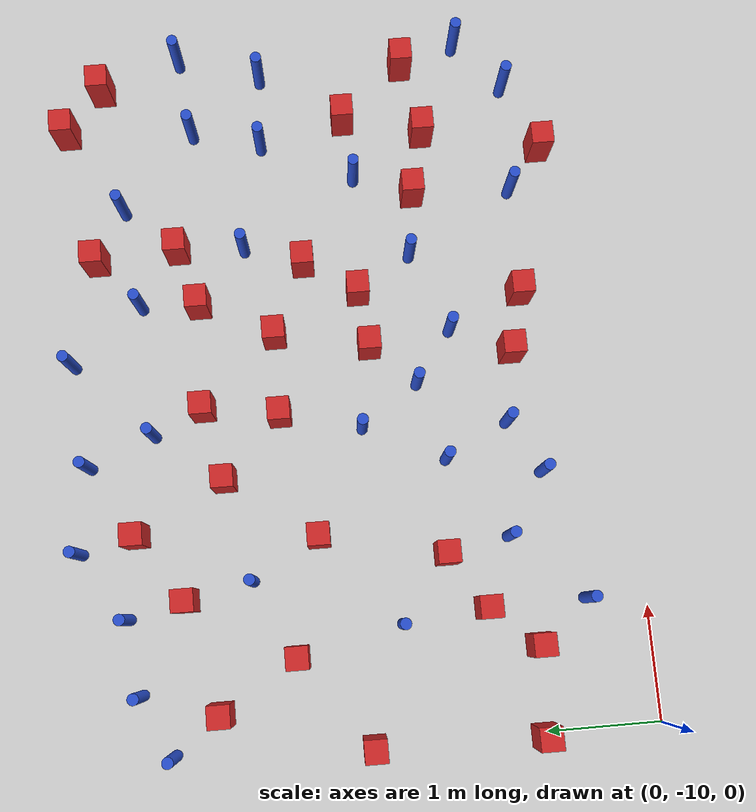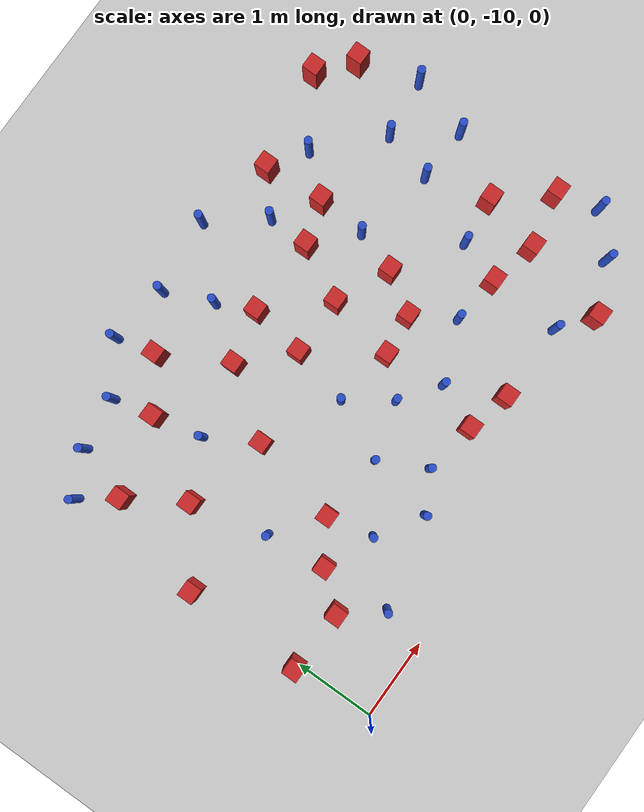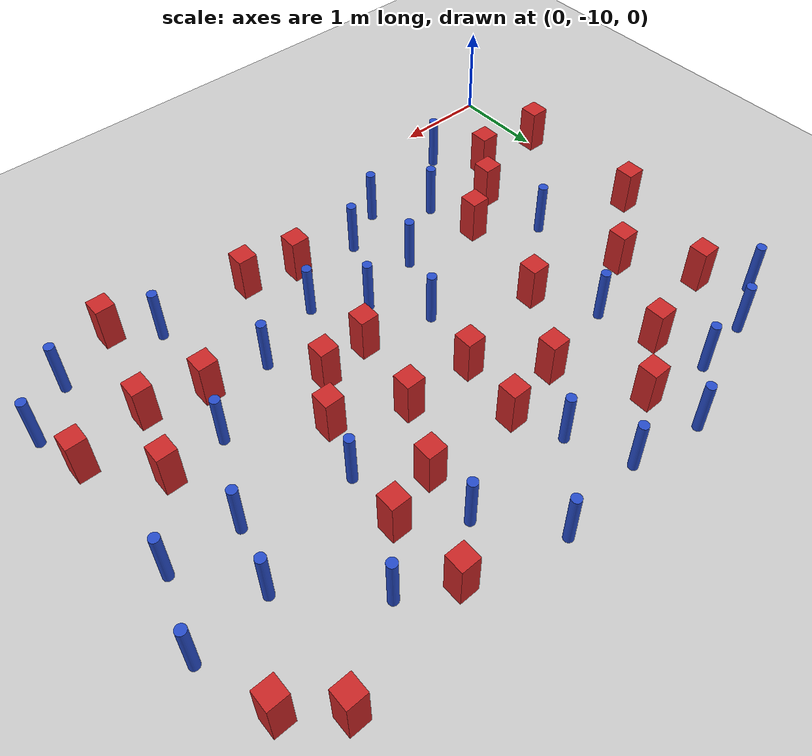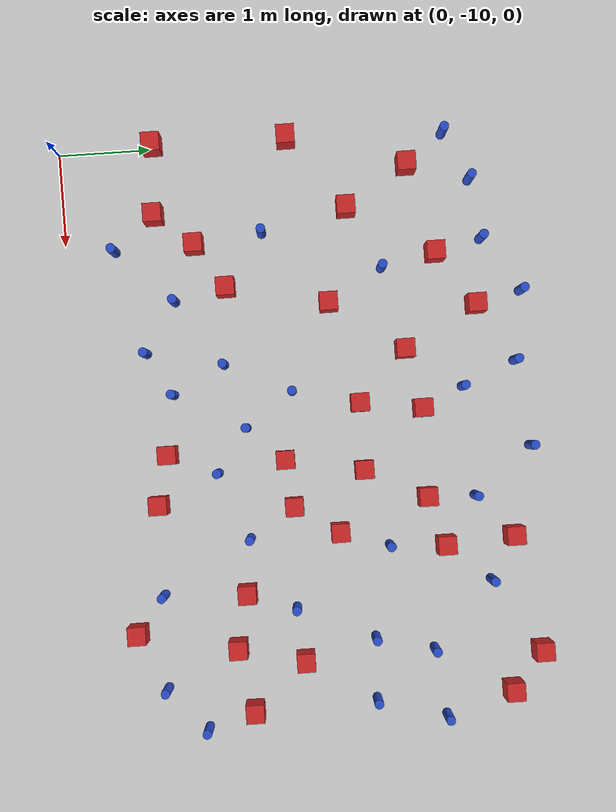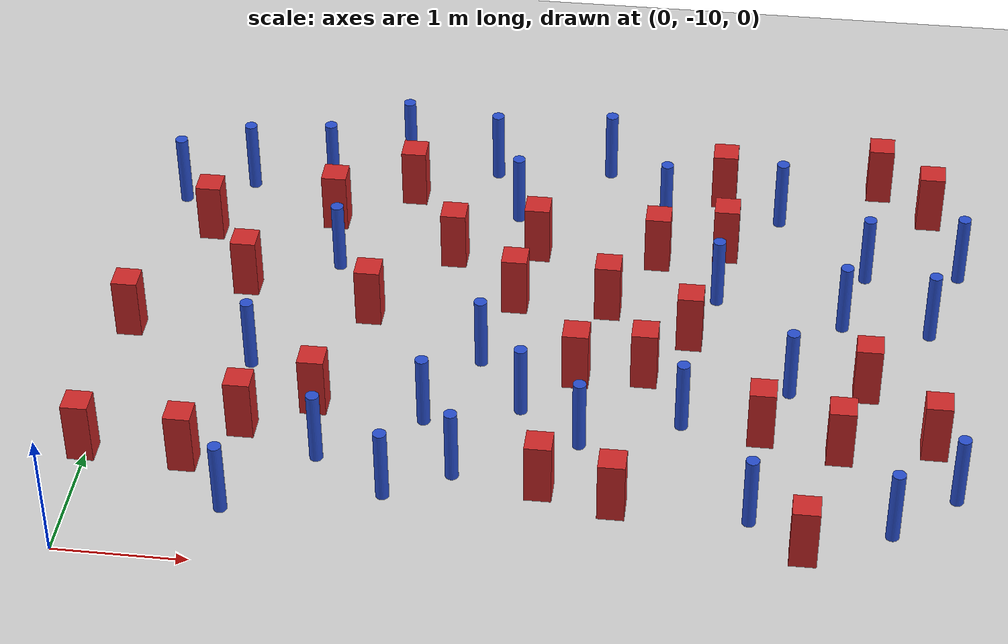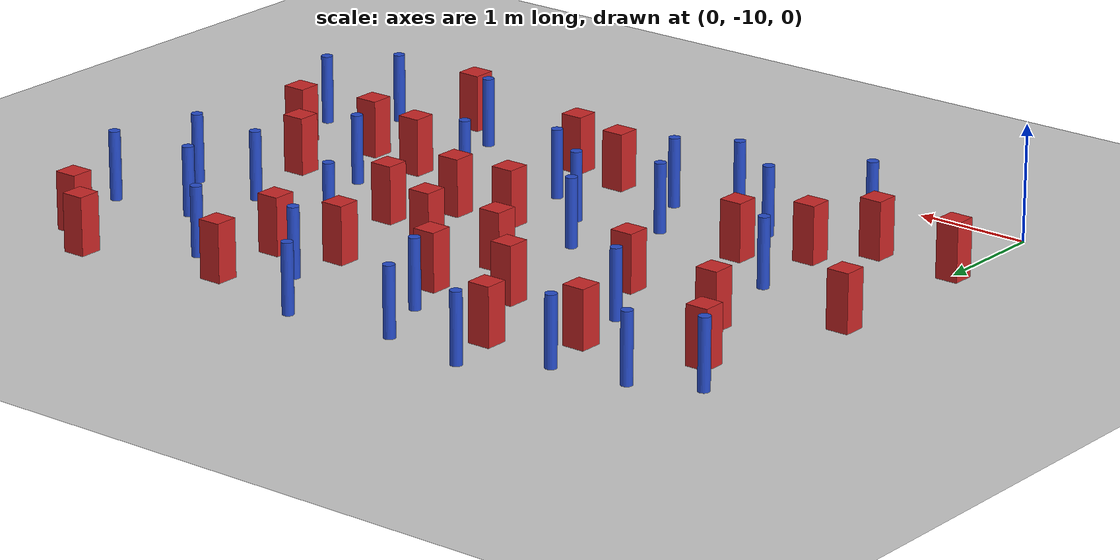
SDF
<sdf version="1.6">
 <world name="default">
  <model name="ground_plane">
   <static>1</static>
   <link name="link">
    <collision name="collision">
     <geometry><plane><normal>0 0 1</normal><size>100 100</size></plane></geometry>
     <surface><friction><ode><mu>100</mu><mu2>50</mu2></ode></friction></surface>
    </collision>
    <visual name="visual">
     <cast_shadows>0</cast_shadows>
     <geometry><plane><normal>0 0 1</normal><size>100 100</size></plane></geometry>
     <material>
      <ambient>1.0 1.0 1.0 1.0</ambient>
      <diffuse>0.8 0.8 0.8 1.0</diffuse>
      <specular>0.01 0.01 0.01 1.000000</specular>
     </material>
    </visual>
   </link>
  </model>
  <model name="square_post_obstacle6">
   <static>true</static>
   <pose>4.34006714366 -7.19658364788 -6.11067671241e-07 -5.50515727128e-06 -8.79689657224e-07 2.37013304536e-05</pose>
   <link name="link">
    <pose>0 0 0.25 0 -0 0</pose>
    <inertial>
     <mass>100</mass>
     <inertia>
      <ixx>0.166667</ixx>
      <ixy>0</ixy>
      <ixz>0</ixz>
      <iyy>0.166667</iyy>
      <iyz>0</iyz>
      <izz>0.166667</izz>
     </inertia>
    </inertial>
    <collision name="collision"><geometry><box><size>.2 .2 .5</size></box></geometry></collision>
    <visual name="visual">
     <geometry><box><size>.2 .2 .5</size></box></geometry>
     <material>
      <script><name>Gazebo/Red</name><uri>file://media/materials/scripts/gazebo.material</uri></script>
     </material>
    </visual>
   </link>
  </model>
  <model name="square_post_obstacle10">
   <static>true</static>
   <pose>4.01620284526 -6.22145135886 -6.11067671241e-07 -5.50515727128e-06 -8.79689657224e-07 2.37013304536e-05</pose>
   <link name="link">
    <pose>0 0 0.25 0 -0 0</pose>
    <inertial>
     <mass>100</mass>
     <inertia>
      <ixx>0.166667</ixx>
      <ixy>0</ixy>
      <ixz>0</ixz>
      <iyy>0.166667</iyy>
      <iyz>0</iyz>
      <izz>0.166667</izz>
     </inertia>
    </inertial>
    <collision name="collision"><geometry><box><size>.2 .2 .5</size></box></geometry></collision>
    <visual name="visual">
     <geometry><box><size>.2 .2 .5</size></box></geometry>
     <material>
      <script><name>Gazebo/Red</name><uri>file://media/materials/scripts/gazebo.material</uri></script>
     </material>
    </visual>
   </link>
  </model>
  <model name="square_post_obstacle14">
   <static>true</static>
   <pose>3.91428252671 -9.15103433209 -6.11067671241e-07 -5.50515727128e-06 -8.79689657224e-07 2.37013304536e-05</pose>
   <link name="link">
    <pose>0 0 0.25 0 -0 0</pose>
    <inertial>
     <mass>100</mass>
     <inertia>
      <ixx>0.166667</ixx>
      <ixy>0</ixy>
      <ixz>0</ixz>
      <iyy>0.166667</iyy>
      <iyz>0</iyz>
      <izz>0.166667</izz>
     </inertia>
    </inertial>
    <collision name="collision"><geometry><box><size>.2 .2 .5</size></box></geometry></collision>
    <visual name="visual">
     <geometry><box><size>.2 .2 .5</size></box></geometry>
     <material>
      <script><name>Gazebo/Red</name><uri>file://media/materials/scripts/gazebo.material</uri></script>
     </material>
    </visual>
   </link>
  </model>
  <model name="pole_obstacle9">
   <static>true</static>
   <pose>1.01335251452 -7.83346470097 -9.47619616065e-06 5.49618799737e-07 2.36310414059e-07 -1.550905348e-07</pose>
   <link name="link">
    <pose>0 0 0.3 0 -0 0</pose>
    <inertial>
     <mass>1</mass>
     <inertia><ixx>0.145833</ixx><ixy>0</ixy><ixz>0</ixz><iyy>0.145833</iyy><iyz>0</iyz><izz>0.125</izz></inertia>
    </inertial>
    <collision name="collision">
     <geometry><cylinder><radius>0.05</radius><length>.6</length></cylinder></geometry>
    </collision>
    <visual name="visual">
     <geometry><cylinder><radius>0.05</radius><length>.6</length></cylinder></geometry>
     <material>
      <script><name>Gazebo/Blue</name><uri>file://media/materials/scripts/gazebo.material</uri></script>
     </material>
    </visual>
   </link>
  </model>
  <model name="square_post_obstacle20">
   <static>true</static>
   <pose>3.67671077395 -6.89130753897 -6.11067671241e-07 -5.50515727128e-06 -8.79689657224e-07 2.37013304536e-05</pose>
   <link name="link">
    <pose>0 0 0.25 0 -0 0</pose>
    <inertial>
     <mass>100</mass>
     <inertia>
      <ixx>0.166667</ixx>
      <ixy>0</ixy>
      <ixz>0</ixz>
      <iyy>0.166667</iyy>
      <iyz>0</iyz>
      <izz>0.166667</izz>
     </inertia>
    </inertial>
    <collision name="collision"><geometry><box><size>.2 .2 .5</size></box></geometry></collision>
    <visual name="visual">
     <geometry><box><size>.2 .2 .5</size></box></geometry>
     <material>
      <script><name>Gazebo/Red</name><uri>file://media/materials/scripts/gazebo.material</uri></script>
     </material>
    </visual>
   </link>
  </model>
  <model name="square_post_obstacle21">
   <static>true</static>
   <pose>6.22377521215 -8.25365913007 -6.11067671241e-07 -5.50515727128e-06 -8.79689657224e-07 2.37013304536e-05</pose>
   <link name="link">
    <pose>0 0 0.25 0 -0 0</pose>
    <inertial>
     <mass>100</mass>
     <inertia>
      <ixx>0.166667</ixx>
      <ixy>0</ixy>
      <ixz>0</ixz>
      <iyy>0.166667</iyy>
      <iyz>0</iyz>
      <izz>0.166667</izz>
     </inertia>
    </inertial>
    <collision name="collision"><geometry><box><size>.2 .2 .5</size></box></geometry></collision>
    <visual name="visual">
     <geometry><box><size>.2 .2 .5</size></box></geometry>
     <material>
      <script><name>Gazebo/Red</name><uri>file://media/materials/scripts/gazebo.material</uri></script>
     </material>
    </visual>
   </link>
  </model>
  <model name="pole_obstacle14">
   <static>true</static>
   <pose>5.13563322867 -7.72506180327 -9.47619616065e-06 5.49618799737e-07 2.36310414037e-07 -1.55090534814e-07</pose>
   <link name="link">
    <pose>0 0 0.3 0 -0 0</pose>
    <inertial>
     <mass>1</mass>
     <inertia><ixx>0.145833</ixx><ixy>0</ixy><ixz>0</ixz><iyy>0.145833</iyy><iyz>0</iyz><izz>0.125</izz></inertia>
    </inertial>
    <collision name="collision">
     <geometry><cylinder><radius>0.05</radius><length>.6</length></cylinder></geometry>
    </collision>
    <visual name="visual">
     <geometry><cylinder><radius>0.05</radius><length>.6</length></cylinder></geometry>
     <material>
      <script><name>Gazebo/Blue</name><uri>file://media/materials/scripts/gazebo.material</uri></script>
     </material>
    </visual>
   </link>
  </model>
  <model name="pole_obstacle16">
   <static>true</static>
   <pose>4.52123557365 -6.66321490745 -9.47619616065e-06 5.49618799737e-07 2.36310414037e-07 -1.55090534814e-07</pose>
   <link name="link">
    <pose>0 0 0.3 0 -0 0</pose>
    <inertial>
     <mass>1</mass>
     <inertia><ixx>0.145833</ixx><ixy>0</ixy><ixz>0</ixz><iyy>0.145833</iyy><iyz>0</iyz><izz>0.125</izz></inertia>
    </inertial>
    <collision name="collision">
     <geometry><cylinder><radius>0.05</radius><length>.6</length></cylinder></geometry>
    </collision>
    <visual name="visual">
     <geometry><cylinder><radius>0.05</radius><length>.6</length></cylinder></geometry>
     <material>
      <script><name>Gazebo/Blue</name><uri>file://media/materials/scripts/gazebo.material</uri></script>
     </material>
    </visual>
   </link>
  </model>
  <model name="square_post_obstacle24">
   <static>true</static>
   <pose>3.04791647013 -6.20675493727 -6.11067671241e-07 -5.50515727128e-06 -8.79689657224e-07 2.37013304536e-05</pose>
   <link name="link">
    <pose>0 0 0.25 0 -0 0</pose>
    <inertial>
     <mass>100</mass>
     <inertia>
      <ixx>0.166667</ixx>
      <ixy>0</ixy>
      <ixz>0</ixz>
      <iyy>0.166667</iyy>
      <iyz>0</iyz>
      <izz>0.166667</izz>
     </inertia>
    </inertial>
    <collision name="collision"><geometry><box><size>.2 .2 .5</size></box></geometry></collision>
    <visual name="visual">
     <geometry><box><size>.2 .2 .5</size></box></geometry>
     <material>
      <script><name>Gazebo/Red</name><uri>file://media/materials/scripts/gazebo.material</uri></script>
     </material>
    </visual>
   </link>
  </model>
  <model name="square_post_obstacle27">
   <static>true</static>
   <pose>0.37739606125 -6.21205459296 -6.11067671241e-07 -5.50515727128e-06 -8.79689657224e-07 2.37013304536e-05</pose>
   <link name="link">
    <pose>0 0 0.25 0 -0 0</pose>
    <inertial>
     <mass>100</mass>
     <inertia>
      <ixx>0.166667</ixx>
      <ixy>0</ixy>
      <ixz>0</ixz>
      <iyy>0.166667</iyy>
      <iyz>0</iyz>
      <izz>0.166667</izz>
     </inertia>
    </inertial>
    <collision name="collision"><geometry><box><size>.2 .2 .5</size></box></geometry></collision>
    <visual name="visual">
     <geometry><box><size>.2 .2 .5</size></box></geometry>
     <material>
      <script><name>Gazebo/Red</name><uri>file://media/materials/scripts/gazebo.material</uri></script>
     </material>
    </visual>
   </link>
  </model>
  <model name="pole_obstacle22">
   <static>true</static>
   <pose>1.23787740158 -5.44488313048 -9.47619616065e-06 5.49618799737e-07 2.36310414061e-07 -1.550905348e-07</pose>
   <link name="link">
    <pose>0 0 0.3 0 -0 0</pose>
    <inertial>
     <mass>1</mass>
     <inertia><ixx>0.145833</ixx><ixy>0</ixy><ixz>0</ixz><iyy>0.145833</iyy><iyz>0</iyz><izz>0.125</izz></inertia>
    </inertial>
    <collision name="collision">
     <geometry><cylinder><radius>0.05</radius><length>.6</length></cylinder></geometry>
    </collision>
    <visual name="visual">
     <geometry><cylinder><radius>0.05</radius><length>.6</length></cylinder></geometry>
     <material>
      <script><name>Gazebo/Blue</name><uri>file://media/materials/scripts/gazebo.material</uri></script>
     </material>
    </visual>
   </link>
  </model>
  <model name="pole_obstacle26">
   <static>true</static>
   <pose>5.6826020537 -6.24986463078 -9.47619616065e-06 5.49618799737e-07 2.36310414037e-07 -1.55090534814e-07</pose>
   <link name="link">
    <pose>0 0 0.3 0 -0 0</pose>
    <inertial>
     <mass>1</mass>
     <inertia><ixx>0.145833</ixx><ixy>0</ixy><ixz>0</ixz><iyy>0.145833</iyy><iyz>0</iyz><izz>0.125</izz></inertia>
    </inertial>
    <collision name="collision">
     <geometry><cylinder><radius>0.05</radius><length>.6</length></cylinder></geometry>
    </collision>
    <visual name="visual">
     <geometry><cylinder><radius>0.05</radius><length>.6</length></cylinder></geometry>
     <material>
      <script><name>Gazebo/Blue</name><uri>file://media/materials/scripts/gazebo.material</uri></script>
     </material>
    </visual>
   </link>
  </model>
  <model name="square_post_obstacle34">
   <static>true</static>
   <pose>4.55420336587 -6.05505328253 -6.11067671241e-07 -5.50515727128e-06 -8.79689657224e-07 2.37013304536e-05</pose>
   <link name="link">
    <pose>0 0 0.25 0 -0 0</pose>
    <inertial>
     <mass>100</mass>
     <inertia>
      <ixx>0.166667</ixx>
      <ixy>0</ixy>
      <ixz>0</ixz>
      <iyy>0.166667</iyy>
      <iyz>0</iyz>
      <izz>0.166667</izz>
     </inertia>
    </inertial>
    <collision name="collision"><geometry><box><size>.2 .2 .5</size></box></geometry></collision>
    <visual name="visual">
     <geometry><box><size>.2 .2 .5</size></box></geometry>
     <material>
      <script><name>Gazebo/Red</name><uri>file://media/materials/scripts/gazebo.material</uri></script>
     </material>
    </visual>
   </link>
  </model>
  <model name="pole_obstacle43">
   <static>true</static>
   <pose>2.83871530915 -5.75020581422 -9.47619616065e-06 5.49618799738e-07 2.3631041406e-07 -1.55090534801e-07</pose>
   <link name="link">
    <pose>0 0 0.3 0 -0 0</pose>
    <inertial>
     <mass>1</mass>
     <inertia><ixx>0.145833</ixx><ixy>0</ixy><ixz>0</ixz><iyy>0.145833</iyy><iyz>0</iyz><izz>0.125</izz></inertia>
    </inertial>
    <collision name="collision">
     <geometry><cylinder><radius>0.05</radius><length>.6</length></cylinder></geometry>
    </collision>
    <visual name="visual">
     <geometry><cylinder><radius>0.05</radius><length>.6</length></cylinder></geometry>
     <material>
      <script><name>Gazebo/Blue</name><uri>file://media/materials/scripts/gazebo.material</uri></script>
     </material>
    </visual>
   </link>
  </model>
  <model name="square_post_obstacle40">
   <static>true</static>
   <pose>4.49980968936 -5.30668104413 -6.11067671241e-07 -5.50515727128e-06 -8.79689657224e-07 2.37013304536e-05</pose>
   <link name="link">
    <pose>0 0 0.25 0 -0 0</pose>
    <inertial>
     <mass>100</mass>
     <inertia>
      <ixx>0.166667</ixx>
      <ixy>0</ixy>
      <ixz>0</ixz>
      <iyy>0.166667</iyy>
      <iyz>0</iyz>
      <izz>0.166667</izz>
     </inertia>
    </inertial>
    <collision name="collision"><geometry><box><size>.2 .2 .5</size></box></geometry></collision>
    <visual name="visual">
     <geometry><box><size>.2 .2 .5</size></box></geometry>
     <material>
      <script><name>Gazebo/Red</name><uri>file://media/materials/scripts/gazebo.material</uri></script>
     </material>
    </visual>
   </link>
  </model>
  <model name="square_post_obstacle43">
   <static>true</static>
   <pose>1.35873171413 -5.95964026334 -6.11067671241e-07 -5.50515727128e-06 -8.79689657224e-07 2.37013304536e-05</pose>
   <link name="link">
    <pose>0 0 0.25 0 -0 0</pose>
    <inertial>
     <mass>100</mass>
     <inertia>
      <ixx>0.166667</ixx>
      <ixy>0</ixy>
      <ixz>0</ixz>
      <iyy>0.166667</iyy>
      <iyz>0</iyz>
      <izz>0.166667</izz>
     </inertia>
    </inertial>
    <collision name="collision"><geometry><box><size>.2 .2 .5</size></box></geometry></collision>
    <visual name="visual">
     <geometry><box><size>.2 .2 .5</size></box></geometry>
     <material>
      <script><name>Gazebo/Red</name><uri>file://media/materials/scripts/gazebo.material</uri></script>
     </material>
    </visual>
   </link>
  </model>
  <model name="pole_obstacle48">
   <static>true</static>
   <pose>0.582743752239 -5.53028465598 -9.47619616065e-06 5.49618799737e-07 2.36310414065e-07 -1.55090534796e-07</pose>
   <link name="link">
    <pose>0 0 0.3 0 -0 0</pose>
    <inertial>
     <mass>1</mass>
     <inertia><ixx>0.145833</ixx><ixy>0</ixy><ixz>0</ixz><iyy>0.145833</iyy><iyz>0</iyz><izz>0.125</izz></inertia>
    </inertial>
    <collision name="collision">
     <geometry><cylinder><radius>0.05</radius><length>.6</length></cylinder></geometry>
    </collision>
    <visual name="visual">
     <geometry><cylinder><radius>0.05</radius><length>.6</length></cylinder></geometry>
     <material>
      <script><name>Gazebo/Blue</name><uri>file://media/materials/scripts/gazebo.material</uri></script>
     </material>
    </visual>
   </link>
  </model>
  <model name="square_post_obstacle54">
   <static>true</static>
   <pose>5.71259558793 -7.66517731911 -6.11067671241e-07 -5.50515727128e-06 -8.79689657224e-07 2.37013304536e-05</pose>
   <link name="link">
    <pose>0 0 0.25 0 -0 0</pose>
    <inertial>
     <mass>100</mass>
     <inertia>
      <ixx>0.166667</ixx>
      <ixy>0</ixy>
      <ixz>0</ixz>
      <iyy>0.166667</iyy>
      <iyz>0</iyz>
      <izz>0.166667</izz>
     </inertia>
    </inertial>
    <collision name="collision"><geometry><box><size>.2 .2 .5</size></box></geometry></collision>
    <visual name="visual">
     <geometry><box><size>.2 .2 .5</size></box></geometry>
     <material>
      <script><name>Gazebo/Red</name><uri>file://media/materials/scripts/gazebo.material</uri></script>
     </material>
    </visual>
   </link>
  </model>
  <model name="pole_obstacle52">
   <static>true</static>
   <pose>5.51648961228 -6.88382458151 -9.47619616065e-06 5.49618799737e-07 2.36310414037e-07 -1.55090534814e-07</pose>
   <link name="link">
    <pose>0 0 0.3 0 -0 0</pose>
    <inertial>
     <mass>1</mass>
     <inertia><ixx>0.145833</ixx><ixy>0</ixy><ixz>0</ixz><iyy>0.145833</iyy><iyz>0</iyz><izz>0.125</izz></inertia>
    </inertial>
    <collision name="collision">
     <geometry><cylinder><radius>0.05</radius><length>.6</length></cylinder></geometry>
    </collision>
    <visual name="visual">
     <geometry><cylinder><radius>0.05</radius><length>.6</length></cylinder></geometry>
     <material>
      <script><name>Gazebo/Blue</name><uri>file://media/materials/scripts/gazebo.material</uri></script>
     </material>
    </visual>
   </link>
  </model>
  <model name="pole_obstacle57">
   <static>true</static>
   <pose>2.76873557869 -7.61720535464 -9.47619616065e-06 5.49618799738e-07 2.3631041406e-07 -1.55090534801e-07</pose>
   <link name="link">
    <pose>0 0 0.3 0 -0 0</pose>
    <inertial>
     <mass>1</mass>
     <inertia><ixx>0.145833</ixx><ixy>0</ixy><ixz>0</ixz><iyy>0.145833</iyy><iyz>0</iyz><izz>0.125</izz></inertia>
    </inertial>
    <collision name="collision">
     <geometry><cylinder><radius>0.05</radius><length>.6</length></cylinder></geometry>
    </collision>
    <visual name="visual">
     <geometry><cylinder><radius>0.05</radius><length>.6</length></cylinder></geometry>
     <material>
      <script><name>Gazebo/Blue</name><uri>file://media/materials/scripts/gazebo.material</uri></script>
     </material>
    </visual>
   </link>
  </model>
  <model name="pole_obstacle58">
   <static>true</static>
   <pose>3.13652454434 -8.14292455435 -9.4761961606e-06 5.49618799729e-07 2.36310414e-07 -1.55090534824e-07</pose>
   <link name="link">
    <pose>0 0 0.3 0 -0 0</pose>
    <inertial>
     <mass>1</mass>
     <inertia><ixx>0.145833</ixx><ixy>0</ixy><ixz>0</ixz><iyy>0.145833</iyy><iyz>0</iyz><izz>0.125</izz></inertia>
    </inertial>
    <collision name="collision">
     <geometry><cylinder><radius>0.05</radius><length>.6</length></cylinder></geometry>
    </collision>
    <visual name="visual">
     <geometry><cylinder><radius>0.05</radius><length>.6</length></cylinder></geometry>
     <material>
      <script><name>Gazebo/Blue</name><uri>file://media/materials/scripts/gazebo.material</uri></script>
     </material>
    </visual>
   </link>
  </model>
  <model name="square_post_obstacle64">
   <static>true</static>
   <pose>1.82848180093 -7.15620824891 -6.11067671241e-07 -5.50515727128e-06 -8.79689657224e-07 2.37013304536e-05</pose>
   <link name="link">
    <pose>0 0 0.25 0 -0 0</pose>
    <inertial>
     <mass>100</mass>
     <inertia>
      <ixx>0.166667</ixx>
      <ixy>0</ixy>
      <ixz>0</ixz>
      <iyy>0.166667</iyy>
      <iyz>0</iyz>
      <izz>0.166667</izz>
     </inertia>
    </inertial>
    <collision name="collision"><geometry><box><size>.2 .2 .5</size></box></geometry></collision>
    <visual name="visual">
     <geometry><box><size>.2 .2 .5</size></box></geometry>
     <material>
      <script><name>Gazebo/Red</name><uri>file://media/materials/scripts/gazebo.material</uri></script>
     </material>
    </visual>
   </link>
  </model>
  <model name="pole_obstacle65">
   <static>true</static>
   <pose>2.42788717396 -8.34282753718 -9.4761961606e-06 5.49618799729e-07 2.36310414e-07 -1.55090534824e-07</pose>
   <link name="link">
    <pose>0 0 0.3 0 -0 0</pose>
    <inertial>
     <mass>1</mass>
     <inertia><ixx>0.145833</ixx><ixy>0</ixy><ixz>0</ixz><iyy>0.145833</iyy><iyz>0</iyz><izz>0.125</izz></inertia>
    </inertial>
    <collision name="collision">
     <geometry><cylinder><radius>0.05</radius><length>.6</length></cylinder></geometry>
    </collision>
    <visual name="visual">
     <geometry><cylinder><radius>0.05</radius><length>.6</length></cylinder></geometry>
     <material>
      <script><name>Gazebo/Blue</name><uri>file://media/materials/scripts/gazebo.material</uri></script>
     </material>
    </visual>
   </link>
  </model>
  <model name="pole_obstacle67">
   <static>true</static>
   <pose>4.04022606986 -5.69325515422 -9.47619616065e-06 5.49618799737e-07 2.36310414037e-07 -1.55090534814e-07</pose>
   <link name="link">
    <pose>0 0 0.3 0 -0 0</pose>
    <inertial>
     <mass>1</mass>
     <inertia><ixx>0.145833</ixx><ixy>0</ixy><ixz>0</ixz><iyy>0.145833</iyy><iyz>0</iyz><izz>0.125</izz></inertia>
    </inertial>
    <collision name="collision">
     <geometry><cylinder><radius>0.05</radius><length>.6</length></cylinder></geometry>
    </collision>
    <visual name="visual">
     <geometry><cylinder><radius>0.05</radius><length>.6</length></cylinder></geometry>
     <material>
      <script><name>Gazebo/Blue</name><uri>file://media/materials/scripts/gazebo.material</uri></script>
     </material>
    </visual>
   </link>
  </model>
  <model name="square_post_obstacle71">
   <static>true</static>
   <pose>1.58904655598 -8.26321158726 -6.11067671241e-07 -5.50515727128e-06 -8.79689657224e-07 2.37013304536e-05</pose>
   <link name="link">
    <pose>0 0 0.25 0 -0 0</pose>
    <inertial>
     <mass>100</mass>
     <inertia>
      <ixx>0.166667</ixx>
      <ixy>0</ixy>
      <ixz>0</ixz>
      <iyy>0.166667</iyy>
      <iyz>0</iyz>
      <izz>0.166667</izz>
     </inertia>
    </inertial>
    <collision name="collision"><geometry><box><size>.2 .2 .5</size></box></geometry></collision>
    <visual name="visual">
     <geometry><box><size>.2 .2 .5</size></box></geometry>
     <material>
      <script><name>Gazebo/Red</name><uri>file://media/materials/scripts/gazebo.material</uri></script>
     </material>
    </visual>
   </link>
  </model>
  <model name="square_post_obstacle89">
   <static>true</static>
   <pose>5.2996983495 -9.47295645429 -6.11067671241e-07 -5.50515727128e-06 -8.79689657224e-07 2.37013304536e-05</pose>
   <link name="link">
    <pose>0 0 0.25 0 -0 0</pose>
    <inertial>
     <mass>100</mass>
     <inertia>
      <ixx>0.166667</ixx>
      <ixy>0</ixy>
      <ixz>0</ixz>
      <iyy>0.166667</iyy>
      <iyz>0</iyz>
      <izz>0.166667</izz>
     </inertia>
    </inertial>
    <collision name="collision"><geometry><box><size>.2 .2 .5</size></box></geometry></collision>
    <visual name="visual">
     <geometry><box><size>.2 .2 .5</size></box></geometry>
     <material>
      <script><name>Gazebo/Red</name><uri>file://media/materials/scripts/gazebo.material</uri></script>
     </material>
    </visual>
   </link>
  </model>
  <model name="square_post_obstacle98">
   <static>true</static>
   <pose>1.95264453608 -5.55172325978 -6.11067671241e-07 -5.50515727128e-06 -8.79689657224e-07 2.37013304536e-05</pose>
   <link name="link">
    <pose>0 0 0.25 0 -0 0</pose>
    <inertial>
     <mass>100</mass>
     <inertia>
      <ixx>0.166667</ixx>
      <ixy>0</ixy>
      <ixz>0</ixz>
      <iyy>0.166667</iyy>
      <iyz>0</iyz>
      <izz>0.166667</izz>
     </inertia>
    </inertial>
    <collision name="collision"><geometry><box><size>.2 .2 .5</size></box></geometry></collision>
    <visual name="visual">
     <geometry><box><size>.2 .2 .5</size></box></geometry>
     <material>
      <script><name>Gazebo/Red</name><uri>file://media/materials/scripts/gazebo.material</uri></script>
     </material>
    </visual>
   </link>
  </model>
  <model name="pole_obstacle115">
   <static>true</static>
   <pose>2.72151764699 -8.91642598427 -9.4761961606e-06 5.49618799729e-07 2.36310414e-07 -1.55090534824e-07</pose>
   <link name="link">
    <pose>0 0 0.3 0 -0 0</pose>
    <inertial>
     <mass>1</mass>
     <inertia><ixx>0.145833</ixx><ixy>0</ixy><ixz>0</ixz><iyy>0.145833</iyy><iyz>0</iyz><izz>0.125</izz></inertia>
    </inertial>
    <collision name="collision">
     <geometry><cylinder><radius>0.05</radius><length>.6</length></cylinder></geometry>
    </collision>
    <visual name="visual">
     <geometry><cylinder><radius>0.05</radius><length>.6</length></cylinder></geometry>
     <material>
      <script><name>Gazebo/Blue</name><uri>file://media/materials/scripts/gazebo.material</uri></script>
     </material>
    </visual>
   </link>
  </model>
  <model name="pole_obstacle123">
   <static>true</static>
   <pose>1.70122736785 -8.8324123094 -9.47619616065e-06 5.49618799737e-07 2.36310414046e-07 -1.55090534809e-07</pose>
   <link name="link">
    <pose>0 0 0.3 0 -0 0</pose>
    <inertial>
     <mass>1</mass>
     <inertia><ixx>0.145833</ixx><ixy>0</ixy><ixz>0</ixz><iyy>0.145833</iyy><iyz>0</iyz><izz>0.125</izz></inertia>
    </inertial>
    <collision name="collision">
     <geometry><cylinder><radius>0.05</radius><length>.6</length></cylinder></geometry>
    </collision>
    <visual name="visual">
     <geometry><cylinder><radius>0.05</radius><length>.6</length></cylinder></geometry>
     <material>
      <script><name>Gazebo/Blue</name><uri>file://media/materials/scripts/gazebo.material</uri></script>
     </material>
    </visual>
   </link>
  </model>
  <model name="pole_obstacle128">
   <static>true</static>
   <pose>1.83546156296 -5.0488527097 -9.47619616065e-06 5.49618799737e-07 2.36310414061e-07 -1.550905348e-07</pose>
   <link name="link">
    <pose>0 0 0.3 0 -0 0</pose>
    <inertial>
     <mass>1</mass>
     <inertia><ixx>0.145833</ixx><ixy>0</ixy><ixz>0</ixz><iyy>0.145833</iyy><iyz>0</iyz><izz>0.125</izz></inertia>
    </inertial>
    <collision name="collision">
     <geometry><cylinder><radius>0.05</radius><length>.6</length></cylinder></geometry>
    </collision>
    <visual name="visual">
     <geometry><cylinder><radius>0.05</radius><length>.6</length></cylinder></geometry>
     <material>
      <script><name>Gazebo/Blue</name><uri>file://media/materials/scripts/gazebo.material</uri></script>
     </material>
    </visual>
   </link>
  </model>
  <model name="pole_obstacle141">
   <static>true</static>
   <pose>2.25076280182 -9.18365271671 -9.4761961606e-06 5.49618799729e-07 2.36310414e-07 -1.55090534824e-07</pose>
   <link name="link">
    <pose>0 0 0.3 0 -0 0</pose>
    <inertial>
     <mass>1</mass>
     <inertia><ixx>0.145833</ixx><ixy>0</ixy><ixz>0</ixz><iyy>0.145833</iyy><iyz>0</iyz><izz>0.125</izz></inertia>
    </inertial>
    <collision name="collision">
     <geometry><cylinder><radius>0.05</radius><length>.6</length></cylinder></geometry>
    </collision>
    <visual name="visual">
     <geometry><cylinder><radius>0.05</radius><length>.6</length></cylinder></geometry>
     <material>
      <script><name>Gazebo/Blue</name><uri>file://media/materials/scripts/gazebo.material</uri></script>
     </material>
    </visual>
   </link>
  </model>
  <model name="square_post_obstacle128">
   <static>true</static>
   <pose>2.39125583162 -6.35756357269 -6.11067671241e-07 -5.50515727128e-06 -8.79689657224e-07 2.37013304536e-05</pose>
   <link name="link">
    <pose>0 0 0.25 0 -0 0</pose>
    <inertial>
     <mass>100</mass>
     <inertia>
      <ixx>0.166667</ixx>
      <ixy>0</ixy>
      <ixz>0</ixz>
      <iyy>0.166667</iyy>
      <iyz>0</iyz>
      <izz>0.166667</izz>
     </inertia>
    </inertial>
    <collision name="collision"><geometry><box><size>.2 .2 .5</size></box></geometry></collision>
    <visual name="visual">
     <geometry><box><size>.2 .2 .5</size></box></geometry>
     <material>
      <script><name>Gazebo/Red</name><uri>file://media/materials/scripts/gazebo.material</uri></script>
     </material>
    </visual>
   </link>
  </model>
  <model name="square_post_obstacle131">
   <static>true</static>
   <pose>3.37381264733 -9.01693504217 -6.11067671241e-07 -5.50515727128e-06 -8.79689657224e-07 2.37013304536e-05</pose>
   <link name="link">
    <pose>0 0 0.25 0 -0 0</pose>
    <inertial>
     <mass>100</mass>
     <inertia>
      <ixx>0.166667</ixx>
      <ixy>0</ixy>
      <ixz>0</ixz>
      <iyy>0.166667</iyy>
      <iyz>0</iyz>
      <izz>0.166667</izz>
     </inertia>
    </inertial>
    <collision name="collision"><geometry><box><size>.2 .2 .5</size></box></geometry></collision>
    <visual name="visual">
     <geometry><box><size>.2 .2 .5</size></box></geometry>
     <material>
      <script><name>Gazebo/Red</name><uri>file://media/materials/scripts/gazebo.material</uri></script>
     </material>
    </visual>
   </link>
  </model>
  <model name="pole_obstacle145">
   <static>true</static>
   <pose>4.90312866859 -9.16503583893 -9.47619616065e-06 5.49618799737e-07 2.36310414065e-07 -1.55090534796e-07</pose>
   <link name="link">
    <pose>0 0 0.3 0 -0 0</pose>
    <inertial>
     <mass>1</mass>
     <inertia><ixx>0.145833</ixx><ixy>0</ixy><ixz>0</ixz><iyy>0.145833</iyy><iyz>0</iyz><izz>0.125</izz></inertia>
    </inertial>
    <collision name="collision">
     <geometry><cylinder><radius>0.05</radius><length>.6</length></cylinder></geometry>
    </collision>
    <visual name="visual">
     <geometry><cylinder><radius>0.05</radius><length>.6</length></cylinder></geometry>
     <material>
      <script><name>Gazebo/Blue</name><uri>file://media/materials/scripts/gazebo.material</uri></script>
     </material>
    </visual>
   </link>
  </model>
  <model name="square_post_obstacle141">
   <static>true</static>
   <pose>6.18233688609 -5.42643991289 -6.11067671241e-07 -5.50515727128e-06 -8.79689657224e-07 2.37013304536e-05</pose>
   <link name="link">
    <pose>0 0 0.25 0 -0 0</pose>
    <inertial>
     <mass>100</mass>
     <inertia>
      <ixx>0.166667</ixx>
      <ixy>0</ixy>
      <ixz>0</ixz>
      <iyy>0.166667</iyy>
      <iyz>0</iyz>
      <izz>0.166667</izz>
     </inertia>
    </inertial>
    <collision name="collision"><geometry><box><size>.2 .2 .5</size></box></geometry></collision>
    <visual name="visual">
     <geometry><box><size>.2 .2 .5</size></box></geometry>
     <material>
      <script><name>Gazebo/Red</name><uri>file://media/materials/scripts/gazebo.material</uri></script>
     </material>
    </visual>
   </link>
  </model>
  <model name="square_post_obstacle144">
   <static>true</static>
   <pose>-0.00277386948006 -7.50066831909 -6.11067671241e-07 -5.50515727128e-06 -8.79689657224e-07 2.37013304536e-05</pose>
   <link name="link">
    <pose>0 0 0.25 0 -0 0</pose>
    <inertial>
     <mass>100</mass>
     <inertia>
      <ixx>0.166667</ixx>
      <ixy>0</ixy>
      <ixz>0</ixz>
      <iyy>0.166667</iyy>
      <iyz>0</iyz>
      <izz>0.166667</izz>
     </inertia>
    </inertial>
    <collision name="collision"><geometry><box><size>.2 .2 .5</size></box></geometry></collision>
    <visual name="visual">
     <geometry><box><size>.2 .2 .5</size></box></geometry>
     <material>
      <script><name>Gazebo/Red</name><uri>file://media/materials/scripts/gazebo.material</uri></script>
     </material>
    </visual>
   </link>
  </model>
  <model name="square_post_obstacle146">
   <static>true</static>
   <pose>4.94274127547 -8.25300132888 -6.11067671241e-07 -5.50515727128e-06 -8.79689657224e-07 2.37013304536e-05</pose>
   <link name="link">
    <pose>0 0 0.25 0 -0 0</pose>
    <inertial>
     <mass>100</mass>
     <inertia>
      <ixx>0.166667</ixx>
      <ixy>0</ixy>
      <ixz>0</ixz>
      <iyy>0.166667</iyy>
      <iyz>0</iyz>
      <izz>0.166667</izz>
     </inertia>
    </inertial>
    <collision name="collision"><geometry><box><size>.2 .2 .5</size></box></geometry></collision>
    <visual name="visual">
     <geometry><box><size>.2 .2 .5</size></box></geometry>
     <material>
      <script><name>Gazebo/Red</name><uri>file://media/materials/scripts/gazebo.material</uri></script>
     </material>
    </visual>
   </link>
  </model>
  <model name="square_post_obstacle154">
   <static>true</static>
   <pose>5.52958731473 -8.39129842439 -6.11067671241e-07 -5.50515727128e-06 -8.79689657224e-07 2.37013304536e-05</pose>
   <link name="link">
    <pose>0 0 0.25 0 -0 0</pose>
    <inertial>
     <mass>100</mass>
     <inertia>
      <ixx>0.166667</ixx>
      <ixy>0</ixy>
      <ixz>0</ixz>
      <iyy>0.166667</iyy>
      <iyz>0</iyz>
      <izz>0.166667</izz>
     </inertia>
    </inertial>
    <collision name="collision"><geometry><box><size>.2 .2 .5</size></box></geometry></collision>
    <visual name="visual">
     <geometry><box><size>.2 .2 .5</size></box></geometry>
     <material>
      <script><name>Gazebo/Red</name><uri>file://media/materials/scripts/gazebo.material</uri></script>
     </material>
    </visual>
   </link>
  </model>
  <model name="pole_obstacle164">
   <static>true</static>
   <pose>3.6101660098 -8.48332943737 -9.4761961606e-06 5.49618799729e-07 2.36310414e-07 -1.55090534824e-07</pose>
   <link name="link">
    <pose>0 0 0.3 0 -0 0</pose>
    <inertial>
     <mass>1</mass>
     <inertia><ixx>0.145833</ixx><ixy>0</ixy><ixz>0</ixz><iyy>0.145833</iyy><iyz>0</iyz><izz>0.125</izz></inertia>
    </inertial>
    <collision name="collision">
     <geometry><cylinder><radius>0.05</radius><length>.6</length></cylinder></geometry>
    </collision>
    <visual name="visual">
     <geometry><cylinder><radius>0.05</radius><length>.6</length></cylinder></geometry>
     <material>
      <script><name>Gazebo/Blue</name><uri>file://media/materials/scripts/gazebo.material</uri></script>
     </material>
    </visual>
   </link>
  </model>
  <model name="pole_obstacle169">
   <static>true</static>
   <pose>4.97098303732 -5.57696066413 -9.47619616065e-06 5.49618799737e-07 2.36310414037e-07 -1.55090534814e-07</pose>
   <link name="link">
    <pose>0 0 0.3 0 -0 0</pose>
    <inertial>
     <mass>1</mass>
     <inertia><ixx>0.145833</ixx><ixy>0</ixy><ixz>0</ixz><iyy>0.145833</iyy><iyz>0</iyz><izz>0.125</izz></inertia>
    </inertial>
    <collision name="collision">
     <geometry><cylinder><radius>0.05</radius><length>.6</length></cylinder></geometry>
    </collision>
    <visual name="visual">
     <geometry><cylinder><radius>0.05</radius><length>.6</length></cylinder></geometry>
     <material>
      <script><name>Gazebo/Blue</name><uri>file://media/materials/scripts/gazebo.material</uri></script>
     </material>
    </visual>
   </link>
  </model>
  <model name="pole_obstacle184">
   <static>true</static>
   <pose>4.34826988782 -8.18045444876 -9.47619616065e-06 5.49618799737e-07 2.36310414065e-07 -1.55090534796e-07</pose>
   <link name="link">
    <pose>0 0 0.3 0 -0 0</pose>
    <inertial>
     <mass>1</mass>
     <inertia><ixx>0.145833</ixx><ixy>0</ixy><ixz>0</ixz><iyy>0.145833</iyy><iyz>0</iyz><izz>0.125</izz></inertia>
    </inertial>
    <collision name="collision">
     <geometry><cylinder><radius>0.05</radius><length>.6</length></cylinder></geometry>
    </collision>
    <visual name="visual">
     <geometry><cylinder><radius>0.05</radius><length>.6</length></cylinder></geometry>
     <material>
      <script><name>Gazebo/Blue</name><uri>file://media/materials/scripts/gazebo.material</uri></script>
     </material>
    </visual>
   </link>
  </model>
  <model name="pole_obstacle186">
   <static>true</static>
   <pose>3.53386605088 -5.05231699806 -9.47619616065e-06 5.49618799738e-07 2.3631041406e-07 -1.55090534801e-07</pose>
   <link name="link">
    <pose>0 0 0.3 0 -0 0</pose>
    <inertial>
     <mass>1</mass>
     <inertia><ixx>0.145833</ixx><ixy>0</ixy><ixz>0</ixz><iyy>0.145833</iyy><iyz>0</iyz><izz>0.125</izz></inertia>
    </inertial>
    <collision name="collision">
     <geometry><cylinder><radius>0.05</radius><length>.6</length></cylinder></geometry>
    </collision>
    <visual name="visual">
     <geometry><cylinder><radius>0.05</radius><length>.6</length></cylinder></geometry>
     <material>
      <script><name>Gazebo/Blue</name><uri>file://media/materials/scripts/gazebo.material</uri></script>
     </material>
    </visual>
   </link>
  </model>
  <model name="pole_obstacle187">
   <static>true</static>
   <pose>6.42042072794 -6.15828593959 -9.47619616065e-06 5.49618799737e-07 2.36310414037e-07 -1.55090534814e-07</pose>
   <link name="link">
    <pose>0 0 0.3 0 -0 0</pose>
    <inertial>
     <mass>1</mass>
     <inertia><ixx>0.145833</ixx><ixy>0</ixy><ixz>0</ixz><iyy>0.145833</iyy><iyz>0</iyz><izz>0.125</izz></inertia>
    </inertial>
    <collision name="collision">
     <geometry><cylinder><radius>0.05</radius><length>.6</length></cylinder></geometry>
    </collision>
    <visual name="visual">
     <geometry><cylinder><radius>0.05</radius><length>.6</length></cylinder></geometry>
     <material>
      <script><name>Gazebo/Blue</name><uri>file://media/materials/scripts/gazebo.material</uri></script>
     </material>
    </visual>
   </link>
  </model>
  <model name="square_post_obstacle176">
   <static>true</static>
   <pose>3.51136034912 -7.7391430063 -6.11067671241e-07 -5.50515727128e-06 -8.79689657224e-07 2.37013304536e-05</pose>
   <link name="link">
    <pose>0 0 0.25 0 -0 0</pose>
    <inertial>
     <mass>100</mass>
     <inertia>
      <ixx>0.166667</ixx>
      <ixy>0</ixy>
      <ixz>0</ixz>
      <iyy>0.166667</iyy>
      <iyz>0</iyz>
      <izz>0.166667</izz>
     </inertia>
    </inertial>
    <collision name="collision"><geometry><box><size>.2 .2 .5</size></box></geometry></collision>
    <visual name="visual">
     <geometry><box><size>.2 .2 .5</size></box></geometry>
     <material>
      <script><name>Gazebo/Red</name><uri>file://media/materials/scripts/gazebo.material</uri></script>
     </material>
    </visual>
   </link>
  </model>
  <model name="square_post_obstacle180">
   <static>true</static>
   <pose>0.745590975167 -8.9951006718 -6.11067671241e-07 -5.50515727128e-06 -8.79689657224e-07 2.37013304536e-05</pose>
   <link name="link">
    <pose>0 0 0.25 0 -0 0</pose>
    <inertial>
     <mass>100</mass>
     <inertia>
      <ixx>0.166667</ixx>
      <ixy>0</ixy>
      <ixz>0</ixz>
      <iyy>0.166667</iyy>
      <iyz>0</iyz>
      <izz>0.166667</izz>
     </inertia>
    </inertial>
    <collision name="collision"><geometry><box><size>.2 .2 .5</size></box></geometry></collision>
    <visual name="visual">
     <geometry><box><size>.2 .2 .5</size></box></geometry>
     <material>
      <script><name>Gazebo/Red</name><uri>file://media/materials/scripts/gazebo.material</uri></script>
     </material>
    </visual>
   </link>
  </model>
  <model name="square_post_obstacle182">
   <static>true</static>
   <pose>4.02828954664 -7.67610559486 -6.11067671241e-07 -5.50515727128e-06 -8.79689657224e-07 2.37013304536e-05</pose>
   <link name="link">
    <pose>0 0 0.25 0 -0 0</pose>
    <inertial>
     <mass>100</mass>
     <inertia>
      <ixx>0.166667</ixx>
      <ixy>0</ixy>
      <ixz>0</ixz>
      <iyy>0.166667</iyy>
      <iyz>0</iyz>
      <izz>0.166667</izz>
     </inertia>
    </inertial>
    <collision name="collision"><geometry><box><size>.2 .2 .5</size></box></geometry></collision>
    <visual name="visual">
     <geometry><box><size>.2 .2 .5</size></box></geometry>
     <material>
      <script><name>Gazebo/Red</name><uri>file://media/materials/scripts/gazebo.material</uri></script>
     </material>
    </visual>
   </link>
  </model>
  <model name="square_post_obstacle186">
   <static>true</static>
   <pose>-0.0201631604376 -8.96135148174 -6.11067671241e-07 -5.50515727128e-06 -8.79689657224e-07 2.37013304536e-05</pose>
   <link name="link">
    <pose>0 0 0.25 0 -0 0</pose>
    <inertial>
     <mass>100</mass>
     <inertia>
      <ixx>0.166667</ixx>
      <ixy>0</ixy>
      <ixz>0</ixz>
      <iyy>0.166667</iyy>
      <iyz>0</iyz>
      <izz>0.166667</izz>
     </inertia>
    </inertial>
    <collision name="collision"><geometry><box><size>.2 .2 .5</size></box></geometry></collision>
    <visual name="visual">
     <geometry><box><size>.2 .2 .5</size></box></geometry>
     <material>
      <script><name>Gazebo/Red</name><uri>file://media/materials/scripts/gazebo.material</uri></script>
     </material>
    </visual>
   </link>
  </model>
  <model name="pole_obstacle197">
   <static>true</static>
   <pose>6.19285075989 -6.91401425857 -9.47619616065e-06 5.49618799737e-07 2.36310414037e-07 -1.55090534814e-07</pose>
   <link name="link">
    <pose>0 0 0.3 0 -0 0</pose>
    <inertial>
     <mass>1</mass>
     <inertia><ixx>0.145833</ixx><ixy>0</ixy><ixz>0</ixz><iyy>0.145833</iyy><iyz>0</iyz><izz>0.125</izz></inertia>
    </inertial>
    <collision name="collision">
     <geometry><cylinder><radius>0.05</radius><length>.6</length></cylinder></geometry>
    </collision>
    <visual name="visual">
     <geometry><cylinder><radius>0.05</radius><length>.6</length></cylinder></geometry>
     <material>
      <script><name>Gazebo/Blue</name><uri>file://media/materials/scripts/gazebo.material</uri></script>
     </material>
    </visual>
   </link>
  </model>
  <model name="square_post_obstacle195">
   <static>true</static>
   <pose>2.9443393665 -6.88885854098 -6.11067671241e-07 -5.50515727128e-06 -8.79689657224e-07 2.37013304536e-05</pose>
   <link name="link">
    <pose>0 0 0.25 0 -0 0</pose>
    <inertial>
     <mass>100</mass>
     <inertia>
      <ixx>0.166667</ixx>
      <ixy>0</ixy>
      <ixz>0</ixz>
      <iyy>0.166667</iyy>
      <iyz>0</iyz>
      <izz>0.166667</izz>
     </inertia>
    </inertial>
    <collision name="collision"><geometry><box><size>.2 .2 .5</size></box></geometry></collision>
    <visual name="visual">
     <geometry><box><size>.2 .2 .5</size></box></geometry>
     <material>
      <script><name>Gazebo/Red</name><uri>file://media/materials/scripts/gazebo.material</uri></script>
     </material>
    </visual>
   </link>
  </model>
  <model name="pole_obstacle201">
   <static>true</static>
   <pose>5.92600184951 -9.19444688577 -9.47619616065e-06 5.49618799737e-07 2.36310414065e-07 -1.55090534796e-07</pose>
   <link name="link">
    <pose>0 0 0.3 0 -0 0</pose>
    <inertial>
     <mass>1</mass>
     <inertia><ixx>0.145833</ixx><ixy>0</ixy><ixz>0</ixz><iyy>0.145833</iyy><iyz>0</iyz><izz>0.125</izz></inertia>
    </inertial>
    <collision name="collision">
     <geometry><cylinder><radius>0.05</radius><length>.6</length></cylinder></geometry>
    </collision>
    <visual name="visual">
     <geometry><cylinder><radius>0.05</radius><length>.6</length></cylinder></geometry>
     <material>
      <script><name>Gazebo/Blue</name><uri>file://media/materials/scripts/gazebo.material</uri></script>
     </material>
    </visual>
   </link>
  </model>
  <model name="pole_obstacle203">
   <static>true</static>
   <pose>0.0564113448234 -5.79014445309 -9.47619616065e-06 5.49618799738e-07 2.36310414062e-07 -1.550905348e-07</pose>
   <link name="link">
    <pose>0 0 0.3 0 -0 0</pose>
    <inertial>
     <mass>1</mass>
     <inertia><ixx>0.145833</ixx><ixy>0</ixy><ixz>0</ixz><iyy>0.145833</iyy><iyz>0</iyz><izz>0.125</izz></inertia>
    </inertial>
    <collision name="collision">
     <geometry><cylinder><radius>0.05</radius><length>.6</length></cylinder></geometry>
    </collision>
    <visual name="visual">
     <geometry><cylinder><radius>0.05</radius><length>.6</length></cylinder></geometry>
     <material>
      <script><name>Gazebo/Blue</name><uri>file://media/materials/scripts/gazebo.material</uri></script>
     </material>
    </visual>
   </link>
  </model>
  <model name="pole_obstacle205">
   <static>true</static>
   <pose>2.59380035064 -5.16065369222 -9.47619616065e-06 5.49618799738e-07 2.3631041406e-07 -1.55090534801e-07</pose>
   <link name="link">
    <pose>0 0 0.3 0 -0 0</pose>
    <inertial>
     <mass>1</mass>
     <inertia><ixx>0.145833</ixx><ixy>0</ixy><ixz>0</ixz><iyy>0.145833</iyy><iyz>0</iyz><izz>0.125</izz></inertia>
    </inertial>
    <collision name="collision">
     <geometry><cylinder><radius>0.05</radius><length>.6</length></cylinder></geometry>
    </collision>
    <visual name="visual">
     <geometry><cylinder><radius>0.05</radius><length>.6</length></cylinder></geometry>
     <material>
      <script><name>Gazebo/Blue</name><uri>file://media/materials/scripts/gazebo.material</uri></script>
     </material>
    </visual>
   </link>
  </model>
  <model name="pole_obstacle209">
   <static>true</static>
   <pose>6.38689714457 -8.77499845637 -9.47619616065e-06 5.49618799737e-07 2.36310414065e-07 -1.55090534796e-07</pose>
   <link name="link">
    <pose>0 0 0.3 0 -0 0</pose>
    <inertial>
     <mass>1</mass>
     <inertia><ixx>0.145833</ixx><ixy>0</ixy><ixz>0</ixz><iyy>0.145833</iyy><iyz>0</iyz><izz>0.125</izz></inertia>
    </inertial>
    <collision name="collision">
     <geometry><cylinder><radius>0.05</radius><length>.6</length></cylinder></geometry>
    </collision>
    <visual name="visual">
     <geometry><cylinder><radius>0.05</radius><length>.6</length></cylinder></geometry>
     <material>
      <script><name>Gazebo/Blue</name><uri>file://media/materials/scripts/gazebo.material</uri></script>
     </material>
    </visual>
   </link>
  </model>
  <model name="pole_obstacle213">
   <static>true</static>
   <pose>1.11231969413 -9.45121926133 -9.47619616065e-06 5.49618799737e-07 2.36310414046e-07 -1.55090534809e-07</pose>
   <link name="link">
    <pose>0 0 0.3 0 -0 0</pose>
    <inertial>
     <mass>1</mass>
     <inertia><ixx>0.145833</ixx><ixy>0</ixy><ixz>0</ixz><iyy>0.145833</iyy><iyz>0</iyz><izz>0.125</izz></inertia>
    </inertial>
    <collision name="collision">
     <geometry><cylinder><radius>0.05</radius><length>.6</length></cylinder></geometry>
    </collision>
    <visual name="visual">
     <geometry><cylinder><radius>0.05</radius><length>.6</length></cylinder></geometry>
     <material>
      <script><name>Gazebo/Blue</name><uri>file://media/materials/scripts/gazebo.material</uri></script>
     </material>
    </visual>
   </link>
  </model>
  <model name="pole_obstacle233">
   <static>true</static>
   <pose>1.48258605247 -6.55113051566 -9.47619616065e-06 5.49618799737e-07 2.36310414061e-07 -1.550905348e-07</pose>
   <link name="link">
    <pose>0 0 0.3 0 -0 0</pose>
    <inertial>
     <mass>1</mass>
     <inertia><ixx>0.145833</ixx><ixy>0</ixy><ixz>0</ixz><iyy>0.145833</iyy><iyz>0</iyz><izz>0.125</izz></inertia>
    </inertial>
    <collision name="collision">
     <geometry><cylinder><radius>0.05</radius><length>.6</length></cylinder></geometry>
    </collision>
    <visual name="visual">
     <geometry><cylinder><radius>0.05</radius><length>.6</length></cylinder></geometry>
     <material>
      <script><name>Gazebo/Blue</name><uri>file://media/materials/scripts/gazebo.material</uri></script>
     </material>
    </visual>
   </link>
  </model>
  <model name="square_post_obstacle205">
   <static>true</static>
   <pose>5.7718499502 -5.08053002312 -6.11067671241e-07 -5.50515727128e-06 -8.79689657224e-07 2.37013304536e-05</pose>
   <link name="link">
    <pose>0 0 0.25 0 -0 0</pose>
    <inertial>
     <mass>100</mass>
     <inertia>
      <ixx>0.166667</ixx>
      <ixy>0</ixy>
      <ixz>0</ixz>
      <iyy>0.166667</iyy>
      <iyz>0</iyz>
      <izz>0.166667</izz>
     </inertia>
    </inertial>
    <collision name="collision"><geometry><box><size>.2 .2 .5</size></box></geometry></collision>
    <visual name="visual">
     <geometry><box><size>.2 .2 .5</size></box></geometry>
     <material>
      <script><name>Gazebo/Red</name><uri>file://media/materials/scripts/gazebo.material</uri></script>
     </material>
    </visual>
   </link>
  </model>
  <model name="square_post_obstacle215">
   <static>true</static>
   <pose>0.802208950203 -6.89846002312 -6.11067671241e-07 -5.50515727128e-06 -8.79689657224e-07 2.37013304536e-05</pose>
   <link name="link">
    <pose>0 0 0.25 0 -0 0</pose>
    <inertial>
     <mass>100</mass>
     <inertia>
      <ixx>0.166667</ixx>
      <ixy>0</ixy>
      <ixz>0</ixz>
      <iyy>0.166667</iyy>
      <iyz>0</iyz>
      <izz>0.166667</izz>
     </inertia>
    </inertial>
    <collision name="collision"><geometry><box><size>.2 .2 .5</size></box></geometry></collision>
    <visual name="visual">
     <geometry><box><size>.2 .2 .5</size></box></geometry>
     <material>
      <script><name>Gazebo/Red</name><uri>file://media/materials/scripts/gazebo.material</uri></script>
     </material>
    </visual>
   </link>
  </model>
  <model name="square_post_obstacle216">
   <static>true</static>
   <pose>1.0971399502 -8.57741002312 -6.11067671241e-07 -5.50515727128e-06 -8.79689657224e-07 2.37013304536e-05</pose>
   <link name="link">
    <pose>0 0 0.25 0 -0 0</pose>
    <inertial>
     <mass>100</mass>
     <inertia>
      <ixx>0.166667</ixx>
      <ixy>0</ixy>
      <ixz>0</ixz>
      <iyy>0.166667</iyy>
      <iyz>0</iyz>
      <izz>0.166667</izz>
     </inertia>
    </inertial>
    <collision name="collision"><geometry><box><size>.2 .2 .5</size></box></geometry></collision>
    <visual name="visual">
     <geometry><box><size>.2 .2 .5</size></box></geometry>
     <material>
      <script><name>Gazebo/Red</name><uri>file://media/materials/scripts/gazebo.material</uri></script>
     </material>
    </visual>
   </link>
  </model>
 </world>
</sdf>
